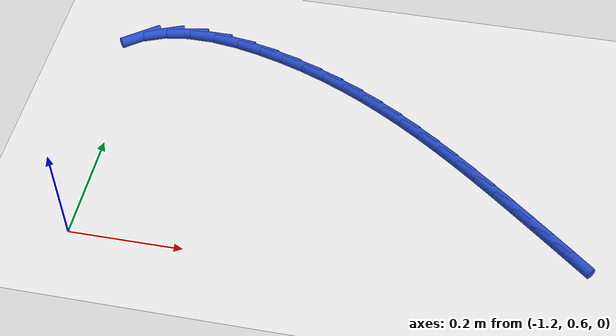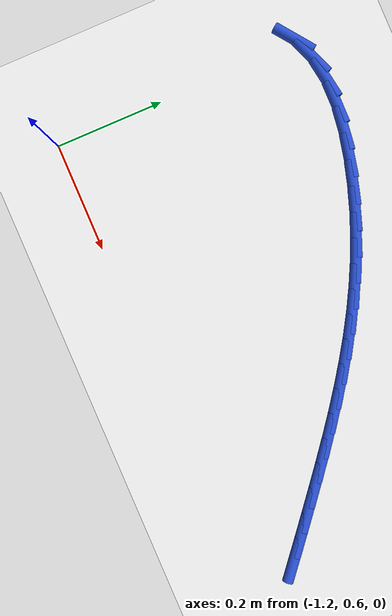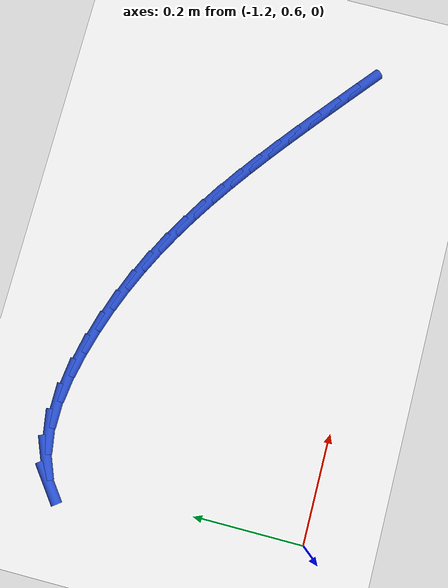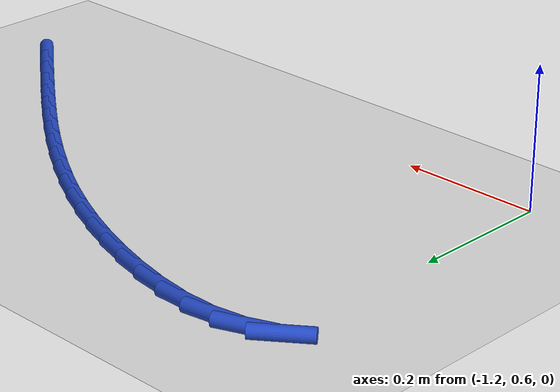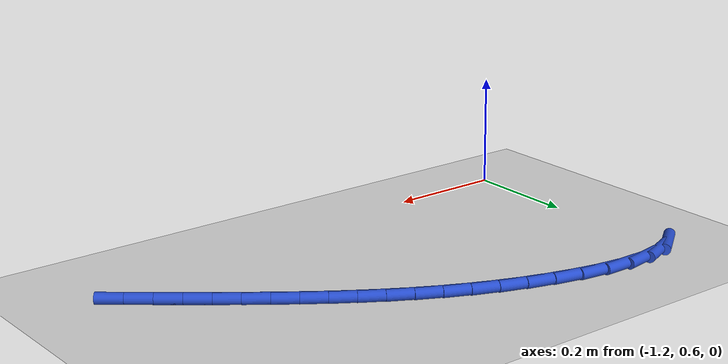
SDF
<sdf version="1.6">
 <world name="default">
  <model name="ground_plane">
   <static>1</static>
   <link name="link">
    <collision name="collision">
     <geometry><plane><normal>0 0 1</normal><size>100 100</size></plane></geometry>
     <surface><friction><ode><mu>100</mu><mu2>50</mu2></ode></friction></surface>
    </collision>
    <visual name="visual">
     <cast_shadows>0</cast_shadows>
     <geometry><plane><normal>0 0 1</normal><size>100 100</size></plane></geometry>
     <material>
      <script><uri>file://media/materials/scripts/gazebo.material</uri><name>Gazebo/WhiteGlow</name></script>
     </material>
    </visual>
   </link>
  </model>
  <model name="line">
   <link name="link_18">
    <pose>-0.3586607704573096 0.6953091979395991 0.01 0 1.57 -0.6877098649833832</pose>
    <collision name="collision">
     <geometry><cylinder><radius>0.01</radius><length>0.08</length></cylinder></geometry>
    </collision>
    <visual name="visual">
     <material>
      <script><name>Gazebo/Blue</name><uri>file://media/materials/scripts/gazebo.material</uri></script>
     </material>
     <geometry><cylinder><radius>0.01</radius><length>0.08</length></cylinder></geometry>
    </visual>
   </link>
   <link name="link_19">
    <pose>-0.394449058288448 0.7247090342354525 0.01 0 1.57 -0.6809553234066922</pose>
    <collision name="collision">
     <geometry><cylinder><radius>0.01</radius><length>0.08</length></cylinder></geometry>
    </collision>
    <visual name="visual">
     <material>
      <script><name>Gazebo/Blue</name><uri>file://media/materials/scripts/gazebo.material</uri></script>
     </material>
     <geometry><cylinder><radius>0.01</radius><length>0.08</length></cylinder></geometry>
    </visual>
   </link>
   <link name="link_20">
    <pose>-0.43027007798238903 0.7537327517395714 0.01 0 1.57 -0.6774845087517437</pose>
    <collision name="collision">
     <geometry><cylinder><radius>0.01</radius><length>0.08</length></cylinder></geometry>
    </collision>
    <visual name="visual">
     <material>
      <script><name>Gazebo/Blue</name><uri>file://media/materials/scripts/gazebo.material</uri></script>
     </material>
     <geometry><cylinder><radius>0.01</radius><length>0.08</length></cylinder></geometry>
    </visual>
   </link>
   <link name="link_21">
    <pose>-0.4659462972252049 0.7824346039713038 0.01 0 1.57 -0.6707703880572167</pose>
    <collision name="collision">
     <geometry><cylinder><radius>0.01</radius><length>0.08</length></cylinder></geometry>
    </collision>
    <visual name="visual">
     <material>
      <script><name>Gazebo/Blue</name><uri>file://media/materials/scripts/gazebo.material</uri></script>
     </material>
     <geometry><cylinder><radius>0.01</radius><length>0.08</length></cylinder></geometry>
    </visual>
   </link>
   <link name="link_22">
    <pose>-0.5015768158342331 0.8107077367349306 0.01 0 1.57 -0.6596830556676785</pose>
    <collision name="collision">
     <geometry><cylinder><radius>0.01</radius><length>0.08</length></cylinder></geometry>
    </collision>
    <visual name="visual">
     <material>
      <script><name>Gazebo/Blue</name><uri>file://media/materials/scripts/gazebo.material</uri></script>
     </material>
     <geometry><cylinder><radius>0.01</radius><length>0.08</length></cylinder></geometry>
    </visual>
   </link>
   <link name="link_23">
    <pose>-0.5373058098281287 0.8384190439175578 0.01 0 1.57 -0.6441704811285792</pose>
    <collision name="collision">
     <geometry><cylinder><radius>0.01</radius><length>0.08</length></cylinder></geometry>
    </collision>
    <visual name="visual">
     <material>
      <script><name>Gazebo/Blue</name><uri>file://media/materials/scripts/gazebo.material</uri></script>
     </material>
     <geometry><cylinder><radius>0.01</radius><length>0.08</length></cylinder></geometry>
    </visual>
   </link>
   <link name="link_24">
    <pose>-0.5732774552255456 0.8654354194062905 0.01 0 1.57 -0.6242084631560192</pose>
    <collision name="collision">
     <geometry><cylinder><radius>0.01</radius><length>0.08</length></cylinder></geometry>
    </collision>
    <visual name="visual">
     <material>
      <script><name>Gazebo/Blue</name><uri>file://media/materials/scripts/gazebo.material</uri></script>
     </material>
     <geometry><cylinder><radius>0.01</radius><length>0.08</length></cylinder></geometry>
    </visual>
   </link>
   <link name="link_25">
    <pose>-0.6096359280451388 0.8916237570882347 0.01 0 1.57 -0.5998106167229476</pose>
    <collision name="collision">
     <geometry><cylinder><radius>0.01</radius><length>0.08</length></cylinder></geometry>
    </collision>
    <visual name="visual">
     <material>
      <script><name>Gazebo/Blue</name><uri>file://media/materials/scripts/gazebo.material</uri></script>
     </material>
     <geometry><cylinder><radius>0.01</radius><length>0.08</length></cylinder></geometry>
    </visual>
   </link>
   <link name="link_26">
    <pose>-0.6465254043055628 0.9168509508504957 0.01 0 1.57 -0.5710404959013357</pose>
    <collision name="collision">
     <geometry><cylinder><radius>0.01</radius><length>0.08</length></cylinder></geometry>
    </collision>
    <visual name="visual">
     <material>
      <script><name>Gazebo/Blue</name><uri>file://media/materials/scripts/gazebo.material</uri></script>
     </material>
     <geometry><cylinder><radius>0.01</radius><length>0.08</length></cylinder></geometry>
    </visual>
   </link>
   <link name="link_27">
    <pose>-0.6840900600254719 0.9409838945801787 0.01 0 1.57 -0.5380250017368592</pose>
    <collision name="collision">
     <geometry><cylinder><radius>0.01</radius><length>0.08</length></cylinder></geometry>
    </collision>
    <visual name="visual">
     <material>
      <script><name>Gazebo/Blue</name><uri>file://media/materials/scripts/gazebo.material</uri></script>
     </material>
     <geometry><cylinder><radius>0.01</radius><length>0.08</length></cylinder></geometry>
    </visual>
   </link>
   <link name="link_28">
    <pose>-0.7224740712235211 0.96388948216439 0.01 0 1.57 -0.500967664206688</pose>
    <collision name="collision">
     <geometry><cylinder><radius>0.01</radius><length>0.08</length></cylinder></geometry>
    </collision>
    <visual name="visual">
     <material>
      <script><name>Gazebo/Blue</name><uri>file://media/materials/scripts/gazebo.material</uri></script>
     </material>
     <geometry><cylinder><radius>0.01</radius><length>0.08</length></cylinder></geometry>
    </visual>
   </link>
   <link name="link_29">
    <pose>-0.761821613918365 0.9854346074902346 0.01 0 1.57 -0.46015981484920965</pose>
    <collision name="collision">
     <geometry><cylinder><radius>0.01</radius><length>0.08</length></cylinder></geometry>
    </collision>
    <visual name="visual">
     <material>
      <script><name>Gazebo/Blue</name><uri>file://media/materials/scripts/gazebo.material</uri></script>
     </material>
     <geometry><cylinder><radius>0.01</radius><length>0.08</length></cylinder></geometry>
    </visual>
   </link>
   <link name="link_30">
    <pose>-0.8022768641286578 1.005486164444818 0.01 0 1.57 -0.4159872505350488</pose>
    <collision name="collision">
     <geometry><cylinder><radius>0.01</radius><length>0.08</length></cylinder></geometry>
    </collision>
    <visual name="visual">
     <material>
      <script><name>Gazebo/Blue</name><uri>file://media/materials/scripts/gazebo.material</uri></script>
     </material>
     <geometry><cylinder><radius>0.01</radius><length>0.08</length></cylinder></geometry>
    </visual>
   </link>
   <link name="link_31">
    <pose>-0.8439839978730546 1.0239110469152464 0.01 0 1.57 -0.36892995409020823</pose>
    <collision name="collision">
     <geometry><cylinder><radius>0.01</radius><length>0.08</length></cylinder></geometry>
    </collision>
    <visual name="visual">
     <material>
      <script><name>Gazebo/Blue</name><uri>file://media/materials/scripts/gazebo.material</uri></script>
     </material>
     <geometry><cylinder><radius>0.01</radius><length>0.08</length></cylinder></geometry>
    </visual>
   </link>
   <link name="link_32">
    <pose>-0.8870871911702094 1.0405761487886245 0.01 0 1.57 -0.31955299316979413</pose>
    <collision name="collision">
     <geometry><cylinder><radius>0.01</radius><length>0.08</length></cylinder></geometry>
    </collision>
    <visual name="visual">
     <material>
      <script><name>Gazebo/Blue</name><uri>file://media/materials/scripts/gazebo.material</uri></script>
     </material>
     <geometry><cylinder><radius>0.01</radius><length>0.08</length></cylinder></geometry>
    </visual>
   </link>
   <link name="link_33">
    <pose>-0.9317306200387776 1.0553483639520587 0.01 0 1.57 -0.2684605193509171</pose>
    <collision name="collision">
     <geometry><cylinder><radius>0.01</radius><length>0.08</length></cylinder></geometry>
    </collision>
    <visual name="visual">
     <material>
      <script><name>Gazebo/Blue</name><uri>file://media/materials/scripts/gazebo.material</uri></script>
     </material>
     <geometry><cylinder><radius>0.01</radius><length>0.08</length></cylinder></geometry>
    </visual>
   </link>
   <link name="link_34">
    <pose>-0.978056793665534 1.0680927611725068 0.01 0 1.57 -0.2094258496542681</pose>
    <collision name="collision">
     <geometry><cylinder><radius>0.01</radius><length>0.08</length></cylinder></geometry>
    </collision>
    <visual name="visual">
     <material>
      <script><name>Gazebo/Blue</name><uri>file://media/materials/scripts/gazebo.material</uri></script>
     </material>
     <geometry><cylinder><radius>0.01</radius><length>0.08</length></cylinder></geometry>
    </visual>
   </link>
   <link name="link_35">
    <pose>-1.0258144935837161 1.078243291788705 0.01 0 1.57 -0.12437987758433425</pose>
    <collision name="collision">
     <geometry><cylinder><radius>0.01</radius><length>0.08</length></cylinder></geometry>
    </collision>
    <visual name="visual">
     <material>
      <script><name>Gazebo/Blue</name><uri>file://media/materials/scripts/gazebo.material</uri></script>
     </material>
     <geometry><cylinder><radius>0.01</radius><length>0.08</length></cylinder></geometry>
    </visual>
   </link>
   <link name="link_36">
    <pose>-1.0738533434648931 1.084249362057518 0.01 0 1.57 -0.0037031809191358264</pose>
    <collision name="collision">
     <geometry><cylinder><radius>0.01</radius><length>0.08</length></cylinder></geometry>
    </collision>
    <visual name="visual">
     <material>
      <script><name>Gazebo/Blue</name><uri>file://media/materials/scripts/gazebo.material</uri></script>
     </material>
     <geometry><cylinder><radius>0.01</radius><length>0.08</length></cylinder></geometry>
    </visual>
   </link>
   <link name="link_37">
    <pose>-1.1208980309558838 1.0844235778429543 0.01 0 1.57 0.1625942439429418</pose>
    <collision name="collision">
     <geometry><cylinder><radius>0.01</radius><length>0.08</length></cylinder></geometry>
    </collision>
    <visual name="visual">
     <material>
      <script><name>Gazebo/Blue</name><uri>file://media/materials/scripts/gazebo.material</uri></script>
     </material>
     <geometry><cylinder><radius>0.01</radius><length>0.08</length></cylinder></geometry>
    </visual>
   </link>
   <link name="link_38">
    <pose>-1.1656732437035078 1.0770785450090217 0.01 0 1.57 0.38174992853129747</pose>
    <collision name="collision">
     <geometry><cylinder><radius>0.01</radius><length>0.08</length></cylinder></geometry>
    </collision>
    <visual name="visual">
     <material>
      <script><name>Gazebo/Blue</name><uri>file://media/materials/scripts/gazebo.material</uri></script>
     </material>
     <geometry><cylinder><radius>0.01</radius><length>0.08</length></cylinder></geometry>
    </visual>
   </link>
   <link name="link_39">
    <pose>-1.2069036693545856 1.0605268694197296 0.01 0 1.57 0.6428385513464456</pose>
    <collision name="collision">
     <geometry><cylinder><radius>0.01</radius><length>0.08</length></cylinder></geometry>
    </collision>
    <visual name="visual">
     <material>
      <script><name>Gazebo/Blue</name><uri>file://media/materials/scripts/gazebo.material</uri></script>
     </material>
     <geometry><cylinder><radius>0.01</radius><length>0.08</length></cylinder></geometry>
    </visual>
   </link>
  </model>
 </world>
</sdf>
